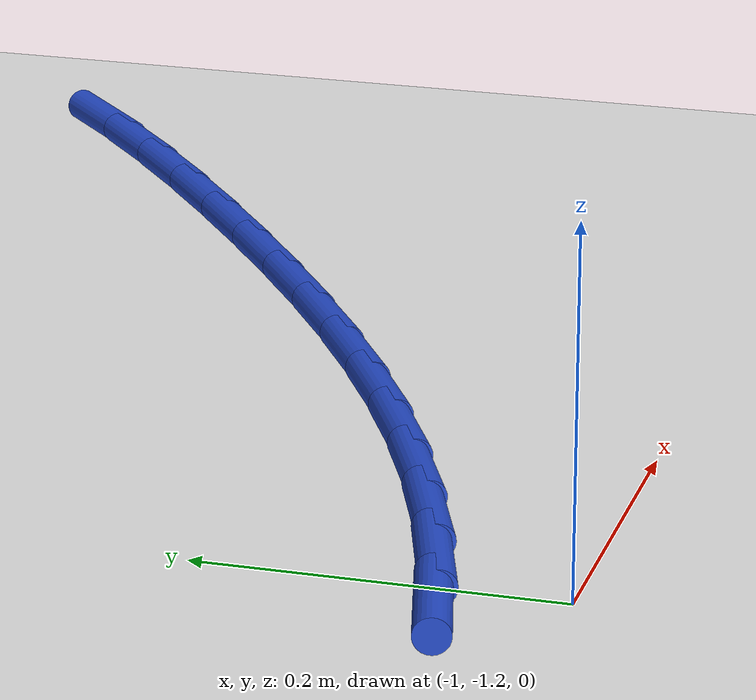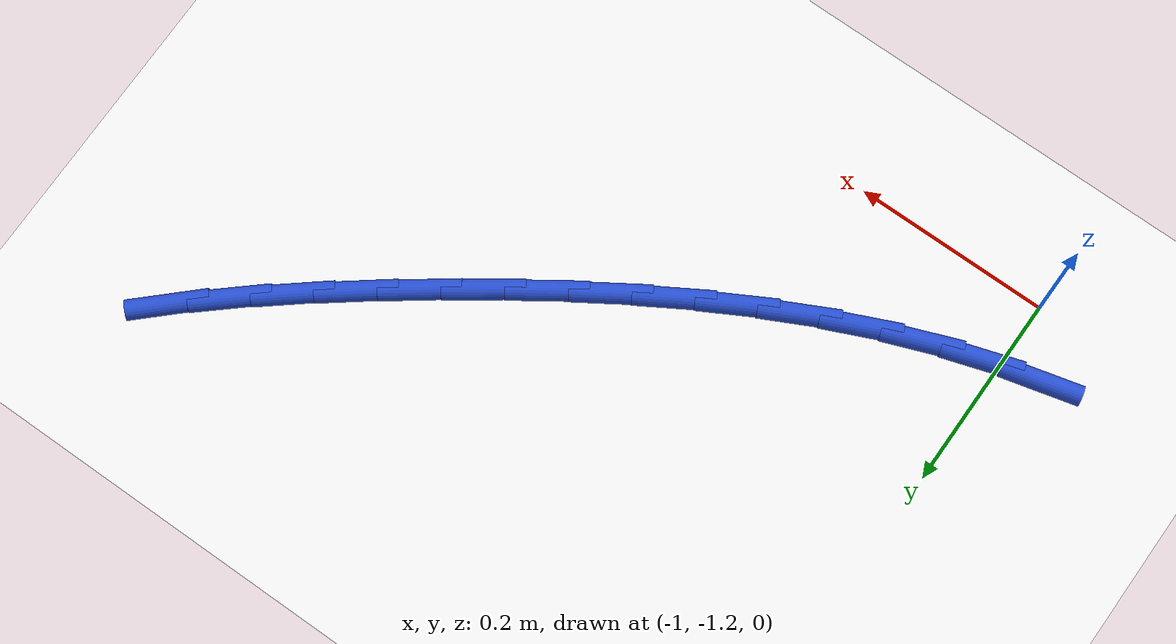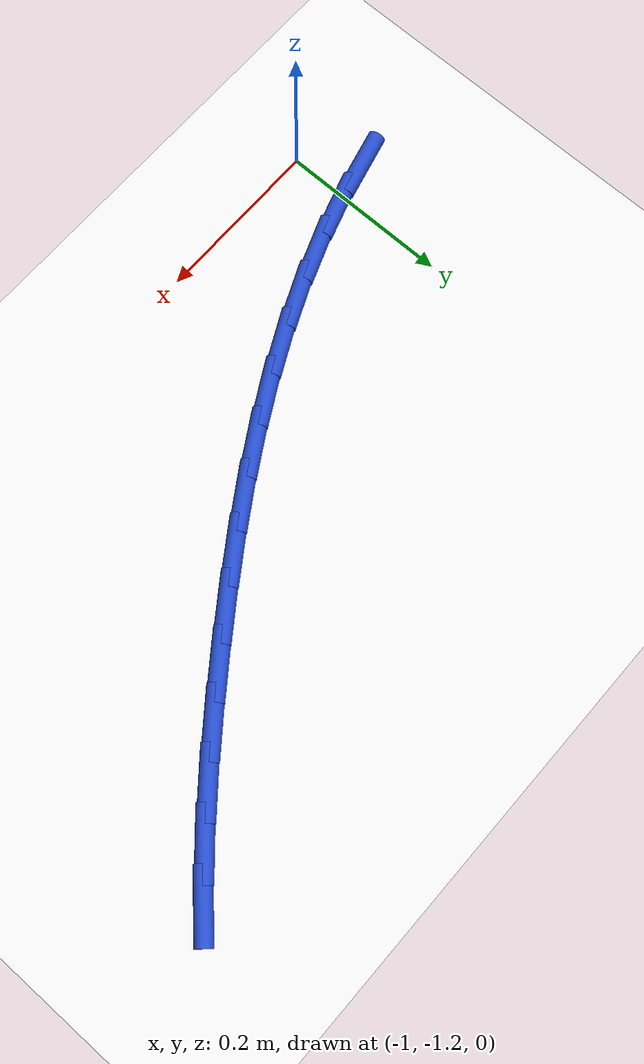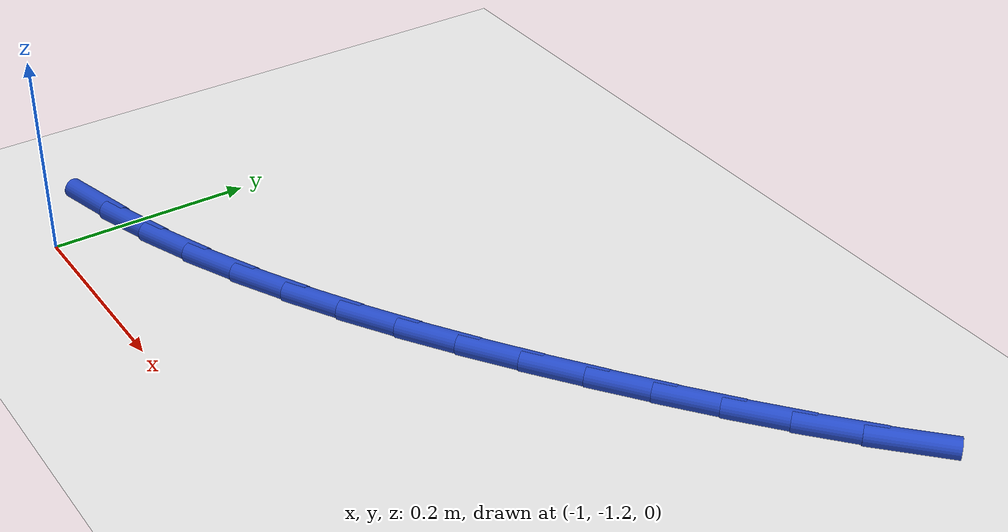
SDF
<sdf version="1.6">
 <world name="default">
  <model name="ground_plane">
   <static>1</static>
   <link name="link">
    <collision name="collision">
     <geometry><plane><normal>0 0 1</normal><size>100 100</size></plane></geometry>
     <surface><friction><ode><mu>100</mu><mu2>50</mu2></ode></friction></surface>
    </collision>
    <visual name="visual">
     <cast_shadows>0</cast_shadows>
     <geometry><plane><normal>0 0 1</normal><size>100 100</size></plane></geometry>
     <material>
      <script><uri>file://media/materials/scripts/gazebo.material</uri><name>Gazebo/WhiteGlow</name></script>
     </material>
    </visual>
   </link>
  </model>
  <model name="line">
   <link name="link_92">
    <pose>-1.039629554532227 -1.138720368268283 0.01 0 1.57 0.2451368036758513</pose>
    <collision name="collision">
     <geometry><cylinder><radius>0.01</radius><length>0.08</length></cylinder></geometry>
    </collision>
    <visual name="visual">
     <material>
      <script><name>Gazebo/Blue</name><uri>file://media/materials/scripts/gazebo.material</uri></script>
     </material>
     <geometry><cylinder><radius>0.01</radius><length>0.08</length></cylinder></geometry>
    </visual>
   </link>
   <link name="link_93">
    <pose>-0.9828985614462369 -1.124528087432544 0.01 0 1.57 0.30742012518088724</pose>
    <collision name="collision">
     <geometry><cylinder><radius>0.01</radius><length>0.08</length></cylinder></geometry>
    </collision>
    <visual name="visual">
     <material>
      <script><name>Gazebo/Blue</name><uri>file://media/materials/scripts/gazebo.material</uri></script>
     </material>
     <geometry><cylinder><radius>0.01</radius><length>0.08</length></cylinder></geometry>
    </visual>
   </link>
   <link name="link_94">
    <pose>-0.9271337121816968 -1.1068235701778155 0.01 0 1.57 0.36439166961832975</pose>
    <collision name="collision">
     <geometry><cylinder><radius>0.01</radius><length>0.08</length></cylinder></geometry>
    </collision>
    <visual name="visual">
     <material>
      <script><name>Gazebo/Blue</name><uri>file://media/materials/scripts/gazebo.material</uri></script>
     </material>
     <geometry><cylinder><radius>0.01</radius><length>0.08</length></cylinder></geometry>
    </visual>
   </link>
   <link name="link_95">
    <pose>-0.8723114754451332 -1.0859129950615387 0.01 0 1.57 0.4159524522202374</pose>
    <collision name="collision">
     <geometry><cylinder><radius>0.01</radius><length>0.08</length></cylinder></geometry>
    </collision>
    <visual name="visual">
     <material>
      <script><name>Gazebo/Blue</name><uri>file://media/materials/scripts/gazebo.material</uri></script>
     </material>
     <geometry><cylinder><radius>0.01</radius><length>0.08</length></cylinder></geometry>
    </visual>
   </link>
   <link name="link_96">
    <pose>-0.8184083199430702 -1.0621025406411544 0.01 0 1.57 0.4621425793209003</pose>
    <collision name="collision">
     <geometry><cylinder><radius>0.01</radius><length>0.08</length></cylinder></geometry>
    </collision>
    <visual name="visual">
     <material>
      <script><name>Gazebo/Blue</name><uri>file://media/materials/scripts/gazebo.material</uri></script>
     </material>
     <geometry><cylinder><radius>0.01</radius><length>0.08</length></cylinder></geometry>
    </visual>
   </link>
   <link name="link_97">
    <pose>-0.7654007143820362 -1.0356983854741049 0.01 0 1.57 0.5030950595514031</pose>
    <collision name="collision">
     <geometry><cylinder><radius>0.01</radius><length>0.08</length></cylinder></geometry>
    </collision>
    <visual name="visual">
     <material>
      <script><name>Gazebo/Blue</name><uri>file://media/materials/scripts/gazebo.material</uri></script>
     </material>
     <geometry><cylinder><radius>0.01</radius><length>0.08</length></cylinder></geometry>
    </visual>
   </link>
   <link name="link_98">
    <pose>-0.7132651274685559 -1.0070067081178302 0.01 0 1.57 0.5389955171795215</pose>
    <collision name="collision">
     <geometry><cylinder><radius>0.01</radius><length>0.08</length></cylinder></geometry>
    </collision>
    <visual name="visual">
     <material>
      <script><name>Gazebo/Blue</name><uri>file://media/materials/scripts/gazebo.material</uri></script>
     </material>
     <geometry><cylinder><radius>0.01</radius><length>0.08</length></cylinder></geometry>
    </visual>
   </link>
   <link name="link_99">
    <pose>-0.6619780279091556 -0.976333687129772 0.01 0 1.57 0.5700497080194477</pose>
    <collision name="collision">
     <geometry><cylinder><radius>0.01</radius><length>0.08</length></cylinder></geometry>
    </collision>
    <visual name="visual">
     <material>
      <script><name>Gazebo/Blue</name><uri>file://media/materials/scripts/gazebo.material</uri></script>
     </material>
     <geometry><cylinder><radius>0.01</radius><length>0.08</length></cylinder></geometry>
    </visual>
   </link>
   <link name="link_100">
    <pose>-0.6115158844103608 -0.9439855010673714 0.01 0 1.57 0.5964586900415241</pose>
    <collision name="collision">
     <geometry><cylinder><radius>0.01</radius><length>0.08</length></cylinder></geometry>
    </collision>
    <visual name="visual">
     <material>
      <script><name>Gazebo/Blue</name><uri>file://media/materials/scripts/gazebo.material</uri></script>
     </material>
     <geometry><cylinder><radius>0.01</radius><length>0.08</length></cylinder></geometry>
    </visual>
   </link>
   <link name="link_101">
    <pose>-0.5618551656786986 -0.91026832848807 0.01 0 1.57 0.6184004276512284</pose>
    <collision name="collision">
     <geometry><cylinder><radius>0.01</radius><length>0.08</length></cylinder></geometry>
    </collision>
    <visual name="visual">
     <material>
      <script><name>Gazebo/Blue</name><uri>file://media/materials/scripts/gazebo.material</uri></script>
     </material>
     <geometry><cylinder><radius>0.01</radius><length>0.08</length></cylinder></geometry>
    </visual>
   </link>
   <link name="link_102">
    <pose>-0.5129723404206946 -0.8754883479493089 0.01 0 1.57 0.6366779260877519</pose>
    <collision name="collision">
     <geometry><cylinder><radius>0.01</radius><length>0.08</length></cylinder></geometry>
    </collision>
    <visual name="visual">
     <material>
      <script><name>Gazebo/Blue</name><uri>file://media/materials/scripts/gazebo.material</uri></script>
     </material>
     <geometry><cylinder><radius>0.01</radius><length>0.08</length></cylinder></geometry>
    </visual>
   </link>
   <link name="link_103">
    <pose>-0.4648638764031334 -0.8399172915574451 0.01 0 1.57 0.6575268484003632</pose>
    <collision name="collision">
     <geometry><cylinder><radius>0.01</radius><length>0.08</length></cylinder></geometry>
    </collision>
    <visual name="visual">
     <material>
      <script><name>Gazebo/Blue</name><uri>file://media/materials/scripts/gazebo.material</uri></script>
     </material>
     <geometry><cylinder><radius>0.01</radius><length>0.08</length></cylinder></geometry>
    </visual>
   </link>
   <link name="link_104">
    <pose>-0.4177111799654627 -0.8035083525767942 0.01 0 1.57 0.6844067745887988</pose>
    <collision name="collision">
     <geometry><cylinder><radius>0.01</radius><length>0.08</length></cylinder></geometry>
    </collision>
    <visual name="visual">
     <material>
      <script><name>Gazebo/Blue</name><uri>file://media/materials/scripts/gazebo.material</uri></script>
     </material>
     <geometry><cylinder><radius>0.01</radius><length>0.08</length></cylinder></geometry>
    </visual>
   </link>
   <link name="link_105">
    <pose>-0.3717956951619141 -0.7660424189631105 0.01 0 1.57 0.7175191496862967</pose>
    <collision name="collision">
     <geometry><cylinder><radius>0.01</radius><length>0.08</length></cylinder></geometry>
    </collision>
    <visual name="visual">
     <material>
      <script><name>Gazebo/Blue</name><uri>file://media/materials/scripts/gazebo.material</uri></script>
     </material>
     <geometry><cylinder><radius>0.01</radius><length>0.08</length></cylinder></geometry>
    </visual>
   </link>
   <link name="link_106">
    <pose>-0.3273998478029203 -0.7272986876918447 0.01 0 1.57 0.7570189858171633</pose>
    <collision name="collision">
     <geometry><cylinder><radius>0.01</radius><length>0.08</length></cylinder></geometry>
    </collision>
    <visual name="visual">
     <material>
      <script><name>Gazebo/Blue</name><uri>file://media/materials/scripts/gazebo.material</uri></script>
     </material>
     <geometry><cylinder><radius>0.01</radius><length>0.08</length></cylinder></geometry>
    </visual>
   </link>
  </model>
 </world>
</sdf>
